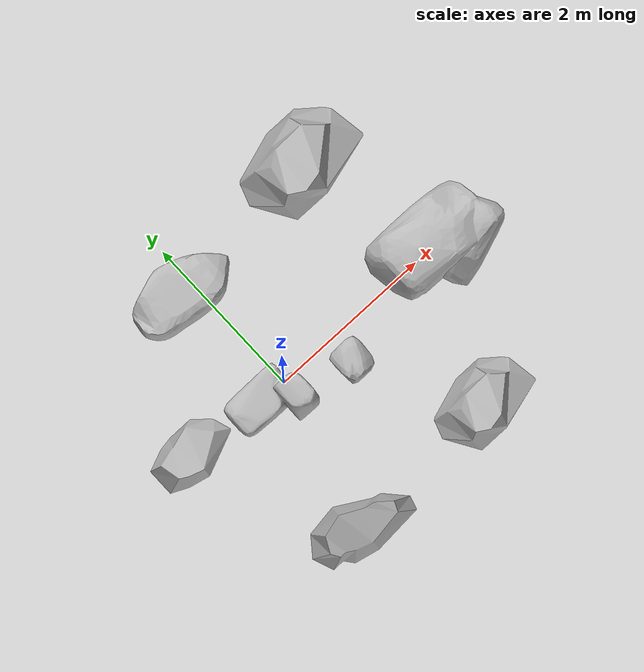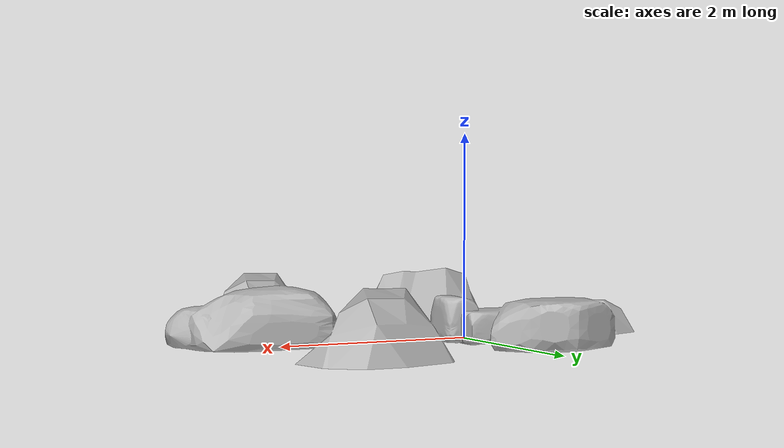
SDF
<?xml version="1.0" ?>
<sdf version="1.5">
  <model name="rock_4">
    <static>true</static>
    <link name="rock_4_link">
      <collision name="collision">
        <geometry>
          <mesh>
            <uri>model://rock_4/meshes/model.dae</uri>
          </mesh>
        </geometry>
      </collision>
      <visual name="visual">
        <geometry>
          <mesh>
            <uri>model://rock_4/meshes/model.dae</uri>
          </mesh>
        </geometry>
      </visual>
    </link>
  </model>
</sdf>
